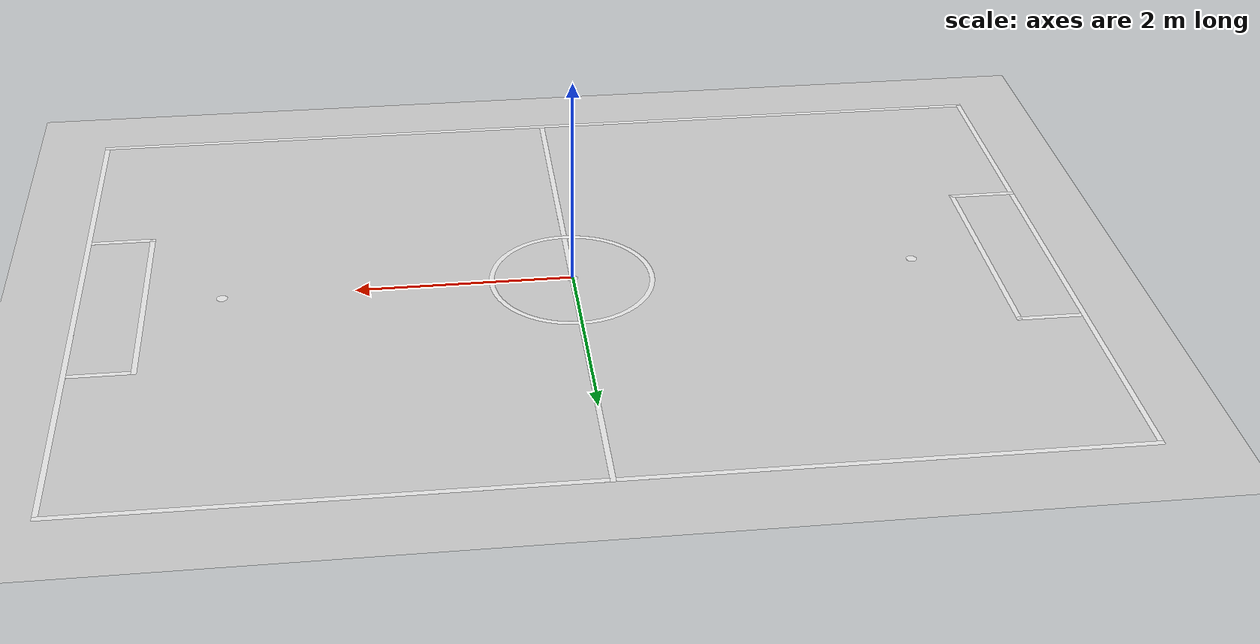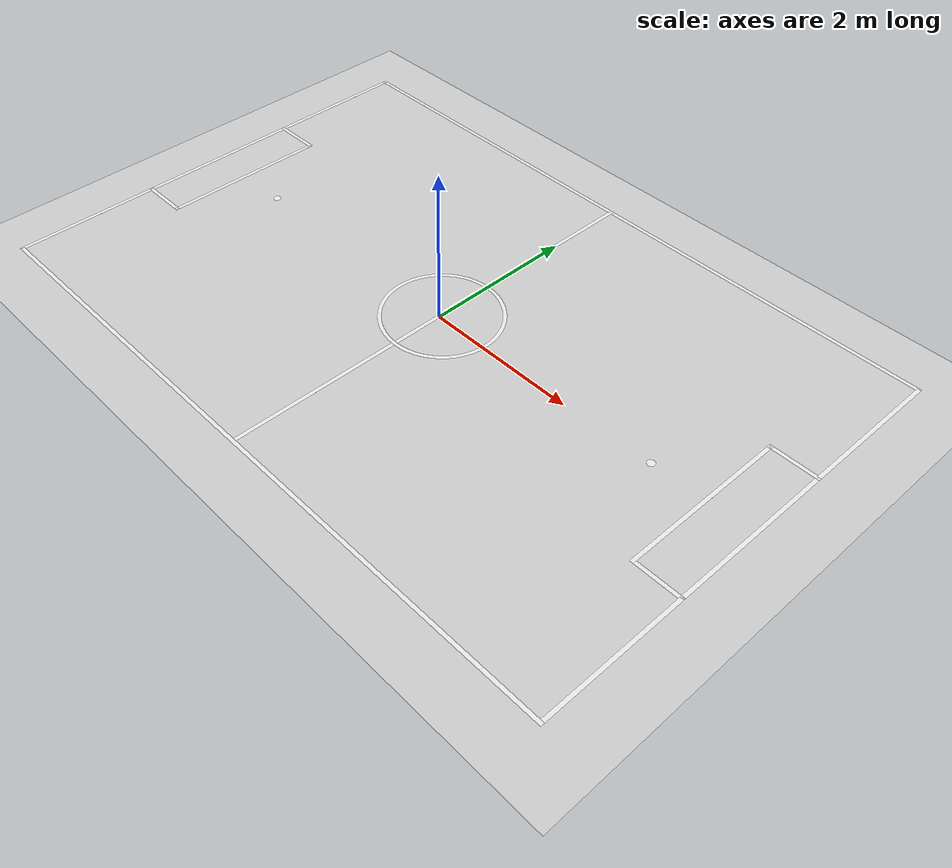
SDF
<sdf version='1.6'>
    <model name='RoboCup 14 SPL Field'>
        <static>1</static>
        <link name='field'>
            <pose frame=''>0 0 0.01 0 -0 0</pose>
            <collision name='collision'>
                <geometry>
                    <plane>
                        <normal>0 0 1</normal>
                        <size>10.4 7.4</size>
                    </plane>
                </geometry>
                <surface>
                    <friction>
                        <ode>
                            <mu>100</mu>
                            <mu2>50</mu2>
                        </ode>
                        <torsional>
                            <ode/>
                        </torsional>
                    </friction>
                    <contact>
                        <ode/>
                    </contact>
                    <bounce/>
                </surface>
                <max_contacts>10</max_contacts>
            </collision>
            <visual name='carpet'>
                <cast_shadows>0</cast_shadows>
                <geometry>
                    <plane>
                        <normal>0 0 1</normal>
                        <size>10.4 7.4</size>
                    </plane>
                </geometry>
                <material>
                    <script>
                        <uri>model://robocup09_spl_field/materials/scripts/</uri>
                        <uri>model://robocup09_spl_field/materials/textures/</uri>
                        <name>RoboCup/Carpet</name>
                    </script>
                </material>
            </visual>
            <visual name='sideline_1'>
                <pose frame=''>0 3 0.011 0 -0 0</pose>
                <cast_shadows>0</cast_shadows>
                <geometry>
                    <plane>
                        <normal>0 0 1</normal>
                        <size>9.05 0.05</size>
                    </plane>
                </geometry>
                <material>
                    <script>
                        <uri>file://media/materials/scripts/gazebo.material</uri>
                        <name>Gazebo/White</name>
                    </script>
                </material>
            </visual>
            <visual name='sideline_2'>
                <pose frame=''>0 -3 0.011 0 -0 0</pose>
                <cast_shadows>0</cast_shadows>
                <geometry>
                    <plane>
                        <normal>0 0 1</normal>
                        <size>9.05 0.05</size>
                    </plane>
                </geometry>
                <material>
                    <script>
                        <uri>file://media/materials/scripts/gazebo.material</uri>
                        <name>Gazebo/White</name>
                    </script>
                </material>
            </visual>
            <visual name='endline_1'>
                <pose frame=''>-4.5 0 0.011 0 -0 0</pose>
                <cast_shadows>0</cast_shadows>
                <geometry>
                    <plane>
                        <normal>0 0 1</normal>
                        <size>0.05 6.05</size>
                    </plane>
                </geometry>
                <material>
                    <script>
                        <uri>file://media/materials/scripts/gazebo.material</uri>
                        <name>Gazebo/White</name>
                    </script>
                </material>
            </visual>
            <visual name='endline_2'>
                <pose frame=''>4.5 0 0.011 0 -0 0</pose>
                <cast_shadows>0</cast_shadows>
                <geometry>
                    <plane>
                        <normal>0 0 1</normal>
                        <size>0.05 6.05</size>
                    </plane>
                </geometry>
                <material>
                    <script>
                        <uri>file://media/materials/scripts/gazebo.material</uri>
                        <name>Gazebo/White</name>
                    </script>
                </material>
            </visual>
            <visual name='halfway_line'>
                <pose frame=''>0 0 0.011 0 -0 0</pose>
                <cast_shadows>0</cast_shadows>
                <geometry>
                    <plane>
                        <normal>0 0 1</normal>
                        <size>0.05 6.05</size>
                    </plane>
                </geometry>
                <material>
                    <script>
                        <uri>file://media/materials/scripts/gazebo.material</uri>
                        <name>Gazebo/White</name>
                    </script>
                </material>
            </visual>
            <visual name='area_1_line_a'>
                <pose frame=''>-3.9 0 0.011 0 -0 0</pose>
                <cast_shadows>0</cast_shadows>
                <geometry>
                    <plane>
                        <normal>0 0 1</normal>
                        <size>0.05 2.25</size>
                    </plane>
                </geometry>
                <material>
                    <script>
                        <uri>file://media/materials/scripts/gazebo.material</uri>
                        <name>Gazebo/White</name>
                    </script>
                </material>
            </visual>
            <visual name='area_2_line_a'>
                <pose frame=''>-4.2 1.1 0.011 0 -0 0</pose>
                <cast_shadows>0</cast_shadows>
                <geometry>
                    <plane>
                        <normal>0 0 1</normal>
                        <size>0.65 0.05</size>
                    </plane>
                </geometry>
                <material>
                    <script>
                        <uri>file://media/materials/scripts/gazebo.material</uri>
                        <name>Gazebo/White</name>
                    </script>
                </material>
            </visual>
            <visual name='area_3_line_a'>
                <pose frame=''>-4.2 -1.1 0.011 0 -0 0</pose>
                <cast_shadows>0</cast_shadows>
                <geometry>
                    <plane>
                        <normal>0 0 1</normal>
                        <size>0.65 0.05</size>
                    </plane>
                </geometry>
                <material>
                    <script>
                        <uri>file://media/materials/scripts/gazebo.material</uri>
                        <name>Gazebo/White</name>
                    </script>
                </material>
            </visual>
            <visual name='area_1_line_b'>
                <pose frame=''>3.9 0 0.011 0 -0 0</pose>
                <cast_shadows>0</cast_shadows>
                <geometry>
                    <plane>
                        <normal>0 0 1</normal>
                        <size>0.05 2.25</size>
                    </plane>
                </geometry>
                <material>
                    <script>
                        <uri>file://media/materials/scripts/gazebo.material</uri>
                        <name>Gazebo/White</name>
                    </script>
                </material>
            </visual>
            <visual name='area_2_line_b'>
                <pose frame=''>4.2 1.1 0.011 0 -0 0</pose>
                <cast_shadows>0</cast_shadows>
                <geometry>
                    <plane>
                        <normal>0 0 1</normal>
                        <size>0.65 0.05</size>
                    </plane>
                </geometry>
                <material>
                    <script>
                        <uri>file://media/materials/scripts/gazebo.material</uri>
                        <name>Gazebo/White</name>
                    </script>
                </material>
            </visual>
            <visual name='area_3_line_b'>
                <pose frame=''>4.2 -1.1 0.011 0 -0 0</pose>
                <cast_shadows>0</cast_shadows>
                <geometry>
                    <plane>
                        <normal>0 0 1</normal>
                        <size>0.65 0.05</size>
                    </plane>
                </geometry>
                <material>
                    <script>
                        <uri>file://media/materials/scripts/gazebo.material</uri>
                        <name>Gazebo/White</name>
                    </script>
                </material>
            </visual>
            <visual name='penalty_a'>
                <pose frame=''>-3.2 0 0.01 0 -0 0</pose>
                <cast_shadows>0</cast_shadows>
                <geometry>
                    <cylinder>
                        <radius>0.05</radius>
                        <length>0.0005</length>
                    </cylinder>
                </geometry>
                <material>
                    <script>
                        <uri>file://media/materials/scripts/gazebo.material</uri>
                        <name>Gazebo/White</name>
                    </script>
                </material>
            </visual>
            <visual name='penalty_b'>
                <pose frame=''>3.2 0 0.01 0 -0 0</pose>
                <cast_shadows>0</cast_shadows>
                <geometry>
                    <cylinder>
                        <radius>0.05</radius>
                        <length>0.0005</length>
                    </cylinder>
                </geometry>
                <material>
                    <script>
                        <uri>file://media/materials/scripts/gazebo.material</uri>
                        <name>Gazebo/White</name>
                    </script>
                </material>
            </visual>
            <visual name='center_point'>
                <pose frame=''>0 0 0.01 0 -0 0</pose>
                <cast_shadows>0</cast_shadows>
                <geometry>
                    <cylinder>
                        <radius>0.05</radius>
                        <length>0.0005</length>
                    </cylinder>
                </geometry>
                <material>
                    <script>
                        <uri>file://media/materials/scripts/gazebo.material</uri>
                        <name>Gazebo/White</name>
                    </script>
                </material>
            </visual>
            <visual name='center_circle'>
                <pose frame=''>0 0 0.005 0 -0 0</pose>
                <cast_shadows>0</cast_shadows>
                <geometry>
                    <mesh>
                        <scale>1 1 0.75</scale>
                        <uri>model://robocup14_spl_field/meshes/circle.dae</uri>
                    </mesh>
                </geometry>
                <material>
                    <script>
                        <uri>file://media/materials/scripts/gazebo.material</uri>
                        <name>Gazebo/White</name>
                    </script>
                </material>
            </visual>
            <self_collide>0</self_collide>
            <kinematic>0</kinematic>
        </link>
        <pose frame=''>0.008111 0.030698 0 0 -0 0</pose>
    </model>
</sdf>
